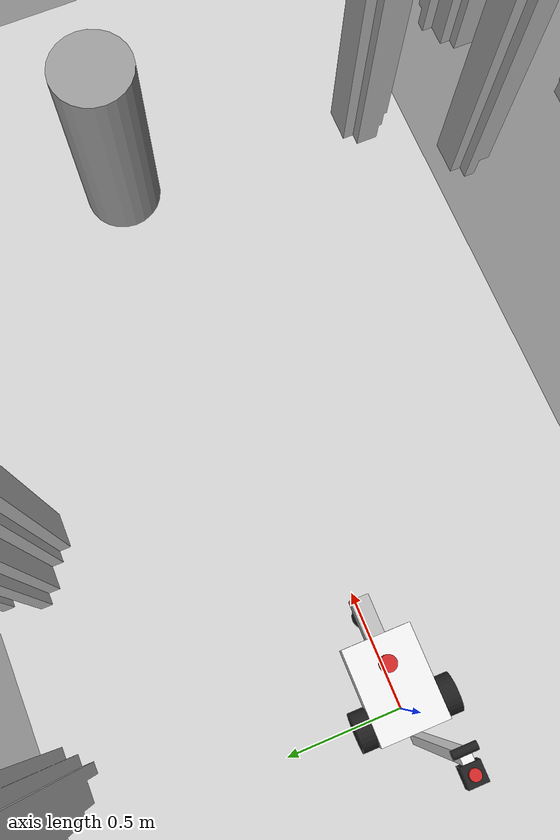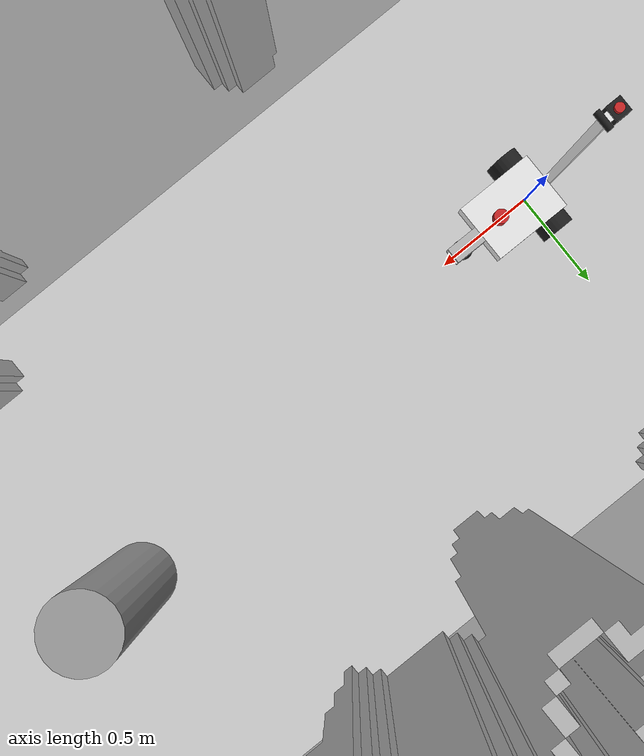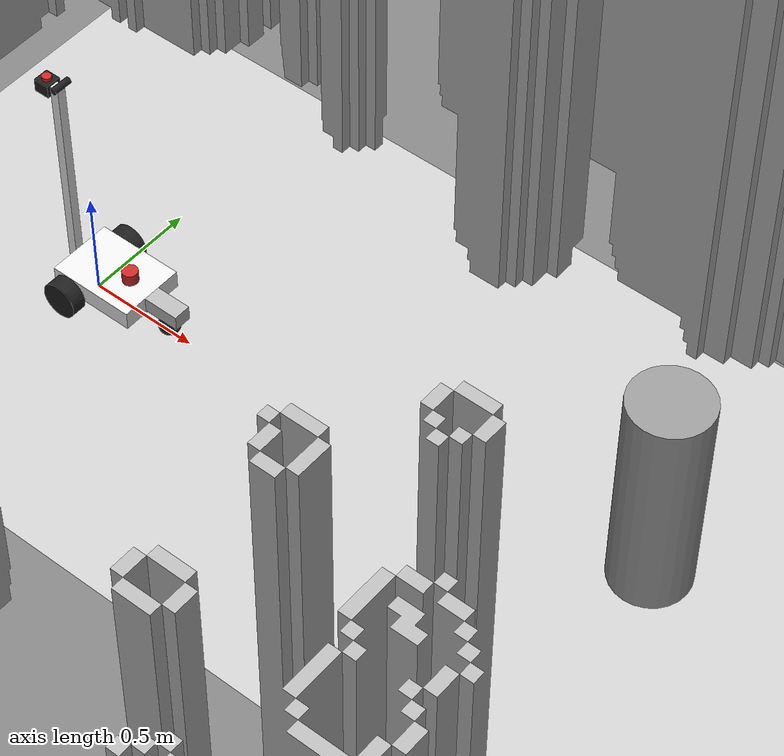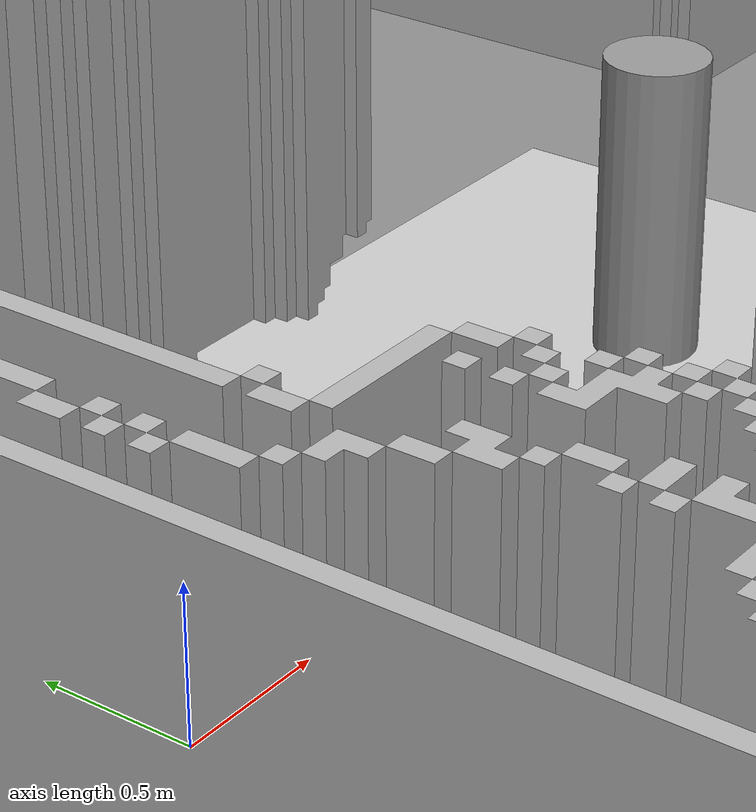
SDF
<sdf version="1.7">
 <world name="default">
  <model name="ground_plane">
   <static>1</static>
   <link name="link">
    <collision name="collision">
     <geometry><plane><normal>0 0 1</normal><size>100 100</size></plane></geometry>
     <surface><friction><ode><mu>100</mu><mu2>50</mu2></ode></friction></surface>
    </collision>
    <visual name="visual">
     <cast_shadows>0</cast_shadows>
     <geometry><plane><normal>0 0 1</normal><size>100 100</size></plane></geometry>
     <material>
      <script><uri>file://media/materials/scripts/gazebo.material</uri><name>Gazebo/Grey</name></script>
     </material>
    </visual>
   </link>
  </model>
  <light name="sun" type="directional">
   <pose>0 0 10 0 -0 0</pose>
   <diffuse>0.8 0.8 0.8 1</diffuse>
   <specular>0.2 0.2 0.2 1</specular>
   <attenuation>
    <range>1000</range>
    <constant>0.9</constant>
    <linear>0.01</linear>
    <quadratic>0.001</quadratic>
   </attenuation>
   <direction>-0.5 0.1 -0.9</direction>
   <spot><inner_angle>0</inner_angle><outer_angle>0</outer_angle><falloff>0</falloff></spot>
  </light>
  <model name="map">
   <link name="link">
    <inertial>
     <mass>15</mass>
     <inertia><ixx>0</ixx><ixy>0</ixy><ixz>0</ixz><iyy>0</iyy><iyz>0</iyz><izz>0</izz></inertia>
    </inertial>
    <collision name="collision">
     <geometry><mesh><uri>model://map/meshes/creative_room.stl</uri></mesh></geometry>
    </collision>
    <visual name="visual">
     <geometry><mesh><uri>model://map/meshes/creative_room.stl</uri></mesh></geometry>
    </visual>
   </link>
   <static>1</static>
  </model>
  <gravity>0 0 -9.8</gravity>
  <magnetic_field>6e-06 2.3e-05 -4.2e-05</magnetic_field>
  <atmosphere type="adiabatic"/>
  <physics type="ode">
   <max_step_size>0.001</max_step_size>
   <real_time_factor>1</real_time_factor>
   <real_time_update_rate>1000</real_time_update_rate>
  </physics>
  <scene><ambient>0.4 0.4 0.4 1</ambient><background>0.7 0.7 0.7 1</background><shadows>1</shadows></scene>
  <audio><device>default</device></audio>
  <spherical_coordinates>
   <surface_model>EARTH_WGS84</surface_model>
   <latitude_deg>0</latitude_deg>
   <longitude_deg>0</longitude_deg>
   <elevation>0</elevation>
   <heading_deg>0</heading_deg>
  </spherical_coordinates>
  <model name="bob">
   <link name="base_footprint">
    <inertial>
     <pose>0.075524 0 0.197052 0 -0 0</pose>
     <mass>18.5001</mass>
     <inertia>
      <ixx>1.70736</ixx>
      <ixy>0</ixy>
      <ixz>0.545712</ixz>
      <iyy>2.13138</iyy>
      <iyz>1.59522e-13</iyz>
      <izz>0.597791</izz>
     </inertia>
    </inertial>
    <collision name="base_footprint_fixed_joint_lump__caster_wheel_collision">
     <pose>0.40745 0 -0.033775 0 -0 0</pose>
     <geometry><sphere><radius>0.048775</radius></sphere></geometry>
     <surface><friction><ode><mu>0.001</mu><mu2>0.001</mu2></ode></friction></surface>
    </collision>
    <collision name="base_footprint_fixed_joint_lump__chassis_collision_1">
     <pose>0.11745 0 0.0425 0 -0 0</pose>
     <geometry><box><size>0.4 0.3 0.085</size></box></geometry>
    </collision>
    <collision name="base_footprint_fixed_joint_lump__camera_mount_collision_2">
     <pose>-0.10255 0 0.4875 0 -0 0</pose>
     <geometry><box><size>0.04 0.04 0.975</size></box></geometry>
    </collision>
    <collision name="base_footprint_fixed_joint_lump__camera_frame_collision_3">
     <pose>-0.08255 0 0.99 1.5708 -0 0</pose>
     <geometry><cylinder><length>0.085</length><radius>0.015</radius></cylinder></geometry>
    </collision>
    <collision name="base_footprint_fixed_joint_lump__emergency_mount_collision_4">
     <pose>-0.15755 0 0.955 0 -0 0</pose>
     <geometry><box><size>0.07 0.07 0.058</size></box></geometry>
    </collision>
    <collision name="base_footprint_fixed_joint_lump__emergency_button_collision_5">
     <pose>-0.15755 0 0.984 0 -0 0</pose>
     <geometry><cylinder><length>0.03</length><radius>0.02</radius></cylinder></geometry>
    </collision>
    <collision name="base_footprint_fixed_joint_lump__wheel_mount_collision_6">
     <pose>0.39995 0 0.05 0 -0 0</pose>
     <geometry><box><size>0.165 0.08 0.07</size></box></geometry>
    </collision>
    <collision name="base_footprint_fixed_joint_lump__imu_frame_collision_7">
     <pose>0.16745 0 0.025 0 -0 0</pose>
     <geometry><box><size>0.02 0.015 0.001</size></box></geometry>
    </collision>
    <collision name="base_footprint_fixed_joint_lump__lidar_frame_collision_8">
     <pose>0.20245 0 0.1125 0 -0 0</pose>
     <geometry><cylinder><length>0.055</length><radius>0.035</radius></cylinder></geometry>
    </collision>
    <visual name="base_footprint_fixed_joint_lump__caster_wheel_visual">
     <pose>0.40745 0 -0.033775 0 -0 0</pose>
     <geometry><sphere><radius>0.048775</radius></sphere></geometry>
     <material>
      <script><name>Gazebo/Black</name><uri>file://media/materials/scripts/gazebo.material</uri></script>
     </material>
    </visual>
    <visual name="base_footprint_fixed_joint_lump__chassis_visual_1">
     <pose>0.11745 0 0.0425 0 -0 0</pose>
     <geometry><box><size>0.4 0.3 0.085</size></box></geometry>
     <material>
      <script><name>Gazebo/White</name><uri>file://media/materials/scripts/gazebo.material</uri></script>
     </material>
    </visual>
    <visual name="base_footprint_fixed_joint_lump__camera_mount_visual_2">
     <pose>-0.10255 0 0.4875 0 -0 0</pose>
     <geometry><box><size>0.04 0.04 0.975</size></box></geometry>
     <material>
      <script><name>Gazebo/White</name><uri>file://media/materials/scripts/gazebo.material</uri></script>
     </material>
    </visual>
    <visual name="base_footprint_fixed_joint_lump__camera_frame_visual_3">
     <pose>-0.08255 0 0.99 1.5708 -0 0</pose>
     <geometry><cylinder><length>0.085</length><radius>0.015</radius></cylinder></geometry>
     <material>
      <script><name>Gazebo/Black</name><uri>file://media/materials/scripts/gazebo.material</uri></script>
     </material>
    </visual>
    <visual name="base_footprint_fixed_joint_lump__emergency_mount_visual_4">
     <pose>-0.15755 0 0.955 0 -0 0</pose>
     <geometry><box><size>0.07 0.07 0.058</size></box></geometry>
     <material>
      <script><name>Gazebo/Black</name><uri>file://media/materials/scripts/gazebo.material</uri></script>
     </material>
    </visual>
    <visual name="base_footprint_fixed_joint_lump__emergency_button_visual_5">
     <pose>-0.15755 0 0.984 0 -0 0</pose>
     <geometry><cylinder><length>0.03</length><radius>0.02</radius></cylinder></geometry>
     <material>
      <script><name>Gazebo/Red</name><uri>file://media/materials/scripts/gazebo.material</uri></script>
     </material>
    </visual>
    <visual name="base_footprint_fixed_joint_lump__wheel_mount_visual_6">
     <pose>0.39995 0 0.05 0 -0 0</pose>
     <geometry><box><size>0.165 0.08 0.07</size></box></geometry>
    </visual>
    <visual name="base_footprint_fixed_joint_lump__imu_frame_visual_7">
     <pose>0.16745 0 0.025 0 -0 0</pose>
     <geometry><box><size>0.02 0.015 0.001</size></box></geometry>
     <material>
      <script><name>Gazebo/Blue</name><uri>file://media/materials/scripts/gazebo.material</uri></script>
     </material>
    </visual>
    <visual name="base_footprint_fixed_joint_lump__lidar_frame_visual_8">
     <pose>0.20245 0 0.1125 0 -0 0</pose>
     <geometry><cylinder><length>0.055</length><radius>0.035</radius></cylinder></geometry>
     <material>
      <script><name>Gazebo/Red</name><uri>file://media/materials/scripts/gazebo.material</uri></script>
     </material>
    </visual>
    <sensor name="camera" type="camera">
     <visualize>0</visualize>
     <update_rate>10</update_rate>
     <camera>
      <horizontal_fov>1.089</horizontal_fov>
      <image><format>R8G8B8</format><width>640</width><height>480</height></image>
      <clip><near>0.05</near><far>8</far></clip>
     </camera>
     <plugin name="camera_controller" filename="libgazebo_ros_camera.so">
      <frame_name>camera_optical_frame</frame_name>
     </plugin>
     <pose>-0.08255 0 0.99 0 -0 0</pose>
    </sensor>
    <sensor name="mpu6050_imu" type="imu">
     <always_on>1</always_on>
     <visualize>0</visualize>
     <update_rate>100</update_rate>
     <plugin name="imu_controller" filename="libgazebo_ros_imu_sensor.so">
      <frame_name>imu_frame</frame_name>
      <ros><remapping>~/out:=imu_broadcaster/imu</remapping></ros>
      <initial_orientation_as_reference>0</initial_orientation_as_reference>
     </plugin>
     <always_on>1</always_on>
     <update_rate>100</update_rate>
     <visualize>1</visualize>
     <imu>
      <angular_velocity>
       <x><noise type="gaussian"><mean>0</mean><stddev>0.0002</stddev></noise></x>
       <y><noise type="gaussian"><mean>0</mean><stddev>0.0002</stddev></noise></y>
       <z><noise type="gaussian"><mean>0</mean><stddev>0.0002</stddev></noise></z>
      </angular_velocity>
      <linear_acceleration>
       <x><noise type="gaussian"><mean>0</mean><stddev>0.017</stddev></noise></x>
       <y><noise type="gaussian"><mean>0</mean><stddev>0.017</stddev></noise></y>
       <z><noise type="gaussian"><mean>0</mean><stddev>0.017</stddev></noise></z>
      </linear_acceleration>
      <orientation>
       <x><noise type="gaussian"><mean>0.0</mean><stddev>2e-3</stddev></noise></x>
       <y><noise type="gaussian"><mean>0.0</mean><stddev>2e-3</stddev></noise></y>
       <z><noise type="gaussian"><mean>0.0</mean><stddev>2e-3</stddev></noise></z>
      </orientation>
     </imu>
     <pose>0.16745 0 0.025 0 -0 0</pose>
    </sensor>
    <sensor name="lidar" type="ray">
     <visualize>1</visualize>
     <update_rate>10</update_rate>
     <ray>
      <scan>
       <horizontal>
        <samples>360</samples>
        <min_angle>-3</min_angle>
        <max_angle>3</max_angle>
        <resolution>1</resolution>
       </horizontal>
       <vertical><samples>1</samples><min_angle>0</min_angle><max_angle>0</max_angle></vertical>
      </scan>
      <range><min>0.15</min><max>6</max><resolution>0.015</resolution></range>
      <noise><type>gaussian</type><mean>0</mean><stddev>0.01</stddev></noise>
     </ray>
     <plugin name="laser_controller" filename="libgazebo_ros_ray_sensor.so">
      <ros><argument>~/out:=scan</argument></ros>
      <output_type>sensor_msgs/LaserScan</output_type>
      <frame_name>lidar_frame</frame_name>
     </plugin>
     <pose>0.20245 0 0.1125 0 -0 0</pose>
    </sensor>
   </link>
   <joint name="left_wheel_joint" type="revolute">
    <pose relative_to="base_footprint">0 0.184 0 -1.5708 0 0</pose>
    <parent>base_footprint</parent>
    <child>left_wheel</child>
    <axis>
     <xyz>0 0 1</xyz>
     <limit><effort>1000</effort><velocity>1000</velocity><lower>-1e+16</lower><upper>1e+16</upper></limit>
     <dynamics>
      <damping>1</damping>
      <friction>1</friction>
      <spring_reference>0</spring_reference>
      <spring_stiffness>0</spring_stiffness>
     </dynamics>
    </axis>
   </joint>
   <link name="left_wheel">
    <pose relative_to="left_wheel_joint">0 0 0 0 -0 0</pose>
    <inertial>
     <mass>3.94514</mass>
     <inertia>
      <ixx>0.00824123</ixx>
      <ixy>0</ixy>
      <ixz>0</ixz>
      <iyy>0.00824123</iyy>
      <iyz>0</iyz>
      <izz>0.0134421</izz>
     </inertia>
    </inertial>
    <collision name="left_wheel_collision">
     <geometry><cylinder><length>0.068</length><radius>0.08255</radius></cylinder></geometry>
     <surface><friction><ode><mu>0.2</mu><mu2>0.2</mu2></ode></friction></surface>
    </collision>
    <visual name="left_wheel_visual">
     <geometry><cylinder><length>0.068</length><radius>0.08255</radius></cylinder></geometry>
     <material>
      <script><name>Gazebo/Black</name><uri>file://media/materials/scripts/gazebo.material</uri></script>
     </material>
    </visual>
   </link>
   <joint name="right_wheel_joint" type="revolute">
    <pose relative_to="base_footprint">0 -0.184 0 1.5708 -0 0</pose>
    <parent>base_footprint</parent>
    <child>right_wheel</child>
    <axis>
     <xyz>0 0 -1</xyz>
     <limit><effort>1000</effort><velocity>1000</velocity><lower>-1e+16</lower><upper>1e+16</upper></limit>
     <dynamics>
      <damping>1</damping>
      <friction>1</friction>
      <spring_reference>0</spring_reference>
      <spring_stiffness>0</spring_stiffness>
     </dynamics>
    </axis>
   </joint>
   <link name="right_wheel">
    <pose relative_to="right_wheel_joint">0 0 0 0 -0 0</pose>
    <inertial>
     <mass>3.94514</mass>
     <inertia>
      <ixx>0.00824123</ixx>
      <ixy>0</ixy>
      <ixz>0</ixz>
      <iyy>0.00824123</iyy>
      <iyz>0</iyz>
      <izz>0.0134421</izz>
     </inertia>
    </inertial>
    <collision name="right_wheel_collision">
     <geometry><cylinder><length>0.068</length><radius>0.08255</radius></cylinder></geometry>
     <surface><friction><ode><mu>0.2</mu><mu2>0.2</mu2></ode></friction></surface>
    </collision>
    <visual name="right_wheel_visual">
     <geometry><cylinder><length>0.068</length><radius>0.08255</radius></cylinder></geometry>
     <material>
      <script><name>Gazebo/Black</name><uri>file://media/materials/scripts/gazebo.material</uri></script>
     </material>
    </visual>
   </link>
   <static>0</static>
   <plugin name="diff_drive" filename="libgazebo_ros_diff_drive.so">
    <left_joint>left_wheel_joint</left_joint>
    <right_joint>right_wheel_joint</right_joint>
    <wheel_separation>0.368</wheel_separation>
    <wheel_diameter>0.1651</wheel_diameter>
    <max_wheel_torque>20</max_wheel_torque>
    <max_wheel_acceleration>2</max_wheel_acceleration>
    <odometry_frame>odom</odometry_frame>
    <robot_base_frame>base_footprint</robot_base_frame>
    <publish_odom>1</publish_odom>
    <publish_odom_tf>1</publish_odom_tf>
    <publish_wheel_tf>1</publish_wheel_tf>
    <publish_wheel_joint_state>1</publish_wheel_joint_state>
    <command_topic>cmd_vel</command_topic>
    <odometry_topic>odom</odometry_topic>
   </plugin>
   <pose>-0.012744 0.000333 0.08255 0 0 -0.00162</pose>
  </model>
  <model name="trash_can">
   <link name="link_0">
    <inertial>
     <mass>1</mass>
     <inertia><ixx>0.145833</ixx><ixy>0</ixy><ixz>0</ixz><iyy>0.145833</iyy><iyz>0</iyz><izz>0.125</izz></inertia>
    </inertial>
    <visual name="visual">
     <geometry><cylinder><radius>0.17</radius><length>1</length></cylinder></geometry>
     <material>
      <lighting>1</lighting>
      <script><uri>file://media/materials/scripts/gazebo.material</uri><name>Gazebo/Grey</name></script>
      <shader type="pixel"><normal_map>__default__</normal_map></shader>
      <ambient>0.3 0.3 0.3 1</ambient>
      <diffuse>0.7 0.7 0.7 1</diffuse>
      <specular>0.01 0.01 0.01 1</specular>
      <emissive>0 0 0 1</emissive>
     </material>
    </visual>
    <collision name="collision">
     <geometry><cylinder><radius>0.17</radius><length>1</length></cylinder></geometry>
     <surface>
      <friction>
       <ode><mu>1</mu><mu2>1</mu2><fdir1>0 0 0</fdir1><slip1>0</slip1><slip2>0</slip2></ode>
       <torsional>
        <coefficient>1</coefficient>
        <patch_radius>0</patch_radius>
        <surface_radius>0</surface_radius>
        <use_patch_radius>1</use_patch_radius>
        <ode><slip>0</slip></ode>
       </torsional>
      </friction>
      <bounce><restitution_coefficient>0</restitution_coefficient><threshold>1e+06</threshold></bounce>
      <contact>
       <collide_without_contact>0</collide_without_contact>
       <collide_without_contact_bitmask>1</collide_without_contact_bitmask>
       <collide_bitmask>1</collide_bitmask>
       <ode>
        <soft_cfm>0</soft_cfm>
        <soft_erp>0.2</soft_erp>
        <kp>1e+13</kp>
        <kd>1</kd>
        <max_vel>0.01</max_vel>
        <min_depth>0</min_depth>
       </ode>
       <bullet>
        <split_impulse>1</split_impulse>
        <split_impulse_penetration_threshold>-0.01</split_impulse_penetration_threshold>
        <soft_cfm>0</soft_cfm>
        <soft_erp>0.2</soft_erp>
        <kp>1e+13</kp>
        <kd>1</kd>
       </bullet>
      </contact>
     </surface>
    </collision>
   </link>
   <static>0</static>
   <pose>2.6 0.25 0.499991 0 -0 0</pose>
  </model>
 </world>
</sdf>
